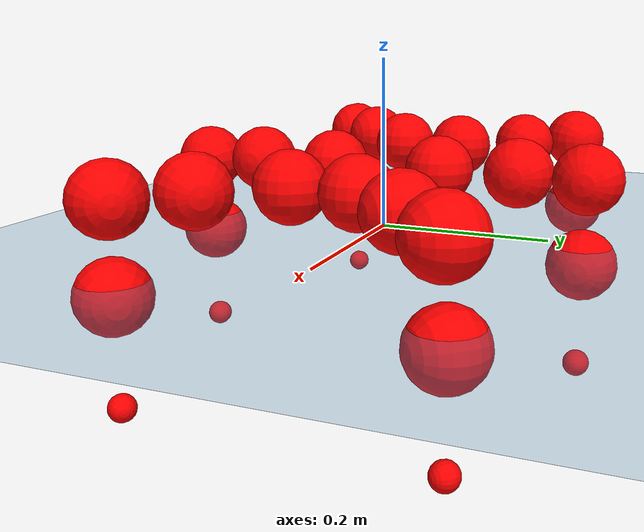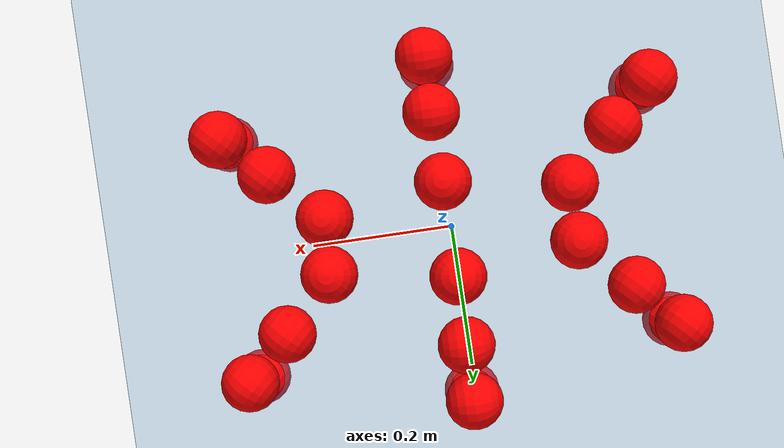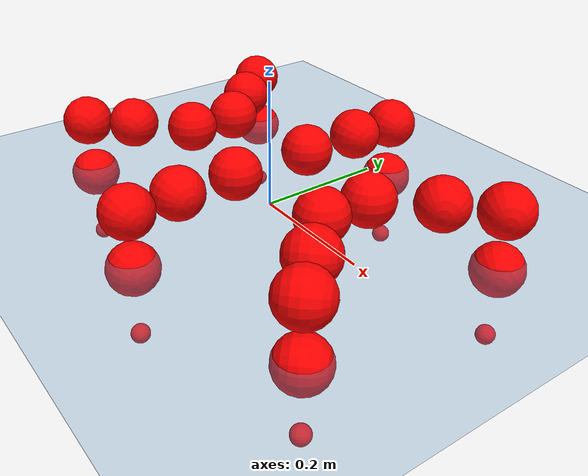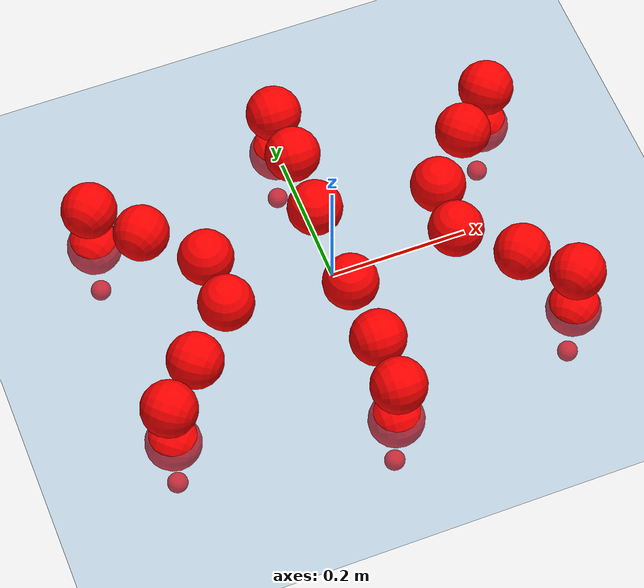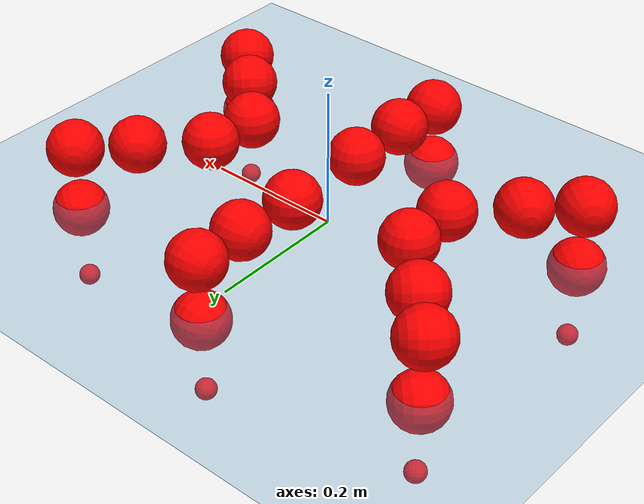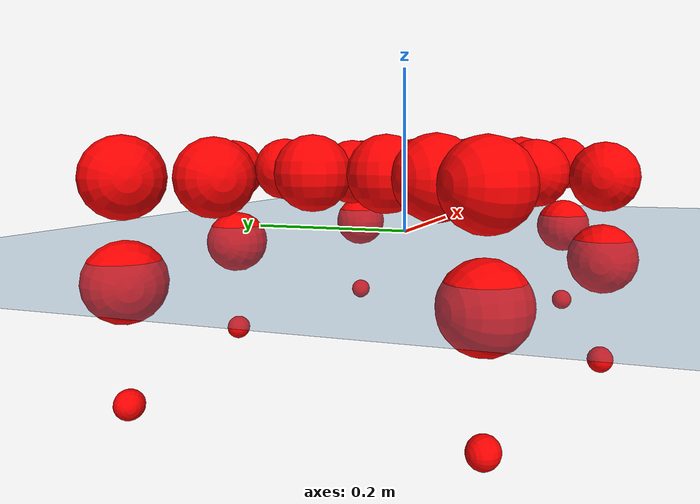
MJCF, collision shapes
<mujoco model="Golem">
  <compiler angle="radian" assetdir="assets" balanceinertia="true" inertiafromgeom="false"/>

  <option timestep="0.005" density="1.2" viscosity="2e-05"/>

  <size nkey="1"/>

  <visual>
    <quality shadowsize="8192"/>
    <map shadowclip="0.5"/>
  </visual>

  <default>
    <default class="/">
      <joint armature="0.01" damping="0.01" frictionloss="0.01"/>
      <geom contype="0" conaffinity="0" group="1" solref="-1000 -80"/>
      <site size="0.01 0.005 0.005" group="5"/>
      <general forcelimited="true" biastype="affine" gainprm="25" biasprm="0 -25 -0.5"/>
      <default class="visual">
        <geom type="mesh" group="2"/>
      </default>
      <default class="collision">
        <geom group="3"/>
      </default>
      <default class="foot">
        <geom size="0.01 0 0" condim="6" group="4" priority="1" solimp="0.015 1 0.01"/>
      </default>
      <default class="reward_collision_sphere">
        <geom group="5" rgba="1 0 0 1"/>
      </default>
    </default>
  </default>

  <asset>
    <texture type="skybox" colorspace="auto" name="//unnamed_texture_0" builtin="gradient" rgb1="0.95 0.95 0.95" rgb2="0.95 0.95 0.95" width="100" height="600"/>
    <texture type="2d" colorspace="auto" name="texplane" builtin="checker" rgb1="0.345 0.575 0.748" rgb2="0.345 0.575 0.748" markrgb="1 1 1" width="512" height="512"/>
    <material name="MatPlane" class="/" texture="texplane" texuniform="true" texrepeat="2 2" specular="0.9"/>
    <mesh name="body" class="/" file="body.stl" scale="0.001 0.001 0.001"/>
    <mesh name="coxa" class="/" file="coxa.stl" scale="0.001 0.001 0.001"/>
    <mesh name="femur" class="/" file="femur.stl" scale="0.001 0.001 0.001"/>
    <mesh name="tibia" class="/" file="tibia.stl" scale="0.001 0.001 0.001"/>
    <mesh name="tarsus" class="/" file="tarsus.stl" scale="0.001 0.001 0.001"/>
  </asset>

  <worldbody>
    <geom name="floor" class="/" size="100 100 0.125" type="plane" group="0" material="MatPlane"/>
    <light name="toplight_shadow" class="/" pos="0 0 5" dir="0.0990148 0.0990148 -0.990148" type="directional" ambient="0.04 0.04 0.04" diffuse="0.55 0.55 0.55" specular="0.12 0.12 0.12"/>
    <light name="toplight_fill" class="/" pos="0 0 5" dir="0.0990148 0.0990148 -0.990148" type="directional" castshadow="false" ambient="0.04 0.04 0.04" diffuse="0.3 0.3 0.3" specular="0.08 0.08 0.08"/>
    <body name="trunk" pos="0.00169541 0.00236405 0.00269127" quat="1 -1.50902e-05 4.46077e-05 2.0292e-05">
      <inertial pos="-0.00146468 -0.000488794 -0.00322126" quat="0.999986 0.00255512 -0.00281353 -0.00366215" mass="3.87254" diaginertia="0.0155941 0.00245414 0.0189953"/>
      <joint name="//unnamed_joint_0" type="free"/>
      <geom name="//unnamed_geom_1" class="/" pos="0 0 0.0726082" quat="1 0 0 0" type="mesh" rgba="0.9 0.9 0.9 1" mesh="body"/>
      <site name="imu" class="/" pos="0.147119 -0.0139513 0.118581" size="0.00992955"/>
      <camera name="track" class="/" pos="0 -1.50207 0" quat="0.707107 0.707107 0 0" mode="trackcom"/>
      <camera name="ego_camera" class="/" pos="0.142133 0 0.11345" quat="-0.5 -0.5 0.5 0.5"/>
      <body name="coxa_RR" pos="-0.193504 -0.0605994 0.0747394" quat="0.383731 -0.000401588 0.000128228 -0.923445">
        <inertial pos="-0.00041983 -0.00181868 0.00221365" quat="0.999925 -0.0091984 0.00476752 -0.00658896" mass="0.202415" diaginertia="0.0155567 0.00233965 0.0188515"/>
        <joint name="coxa_joint_RR" class="/" pos="0 0 0" axis="-8.87546e-05 -0.000984785 -1" stiffness="0.00685926" range="-3.08288 3.13323" armature="0.0100895" damping="0.00235176" frictionloss="0.0103054"/>
        <geom name="//unnamed_geom_2" class="/" type="mesh" rgba="0.2 0.2 0.2 1" mesh="coxa"/>
        <geom name="//unnamed_geom_3" class="reward_collision_sphere" size="0.0397182" pos="-0.0327998 0 0"/>
        <body name="femur_RR" pos="0.0664508 0.000199774 -0.000409678" quat="0.499212 -0.499831 0.50017 0.500786">
          <inertial pos="-0.00284736 -0.000657132 -0.000297152" quat="1 -0.000578547 -7.40661e-05 0.000654048" mass="0.199828" diaginertia="0.0159612 0.00244985 0.0192476"/>
          <joint name="femur_joint_RR" class="/" pos="0 0 0" axis="-0.00399889 -0.00351728 -0.999986" stiffness="0.00808741" range="-3.19587 3.19214" armature="0.00844659" damping="0" frictionloss="0.010036"/>
          <geom name="//unnamed_geom_4" class="/" type="mesh" rgba="0.9 0.9 0.9 1" mesh="femur"/>
          <geom name="//unnamed_geom_5" class="reward_collision_sphere" size="0.0397182"/>
          <body name="tibia_RR" pos="0.00233722 -0.0802676 -0.000674728" quat="0.000184029 1 -4.12924e-05 -0.000371755">
            <inertial pos="0.00226067 5.65432e-05 0.000171562" quat="0.999918 -5.91853e-05 -0.0108147 -0.00689874" mass="0.194843" diaginertia="0.0161282 0.00254945 0.0197752"/>
            <joint name="tibia_joint_RR" class="/" pos="0 0 0" axis="-0.0124821 0.00750175 0.999894" range="-3.1853 3.11409" armature="0.0101428" damping="0.0223118" frictionloss="0.00959612"/>
            <geom name="//unnamed_geom_6" class="/" type="mesh" rgba="0.2 0.2 0.2 1" mesh="tibia"/>
            <geom name="//unnamed_geom_7" class="reward_collision_sphere" size="0.0397182"/>
            <body name="tarsus_RR" pos="0.0965945 -0.0018974 -0.00023346" quat="1 -6.88406e-05 0.000413926 -0.000321681">
              <inertial pos="0.069531 0.00157029 -0.00272589" quat="0.506006 0.494347 0.494104 0.505411" mass="0.203035" diaginertia="0.0155139 0.00253892 0.0192486"/>
              <joint name="tarsus_joint_RR" class="/" pos="0 0 0" axis="-0.00322793 0.0051263 0.999982" range="-3.10017 3.14994" armature="0.0106487" damping="0.0433377" frictionloss="0.0111479"/>
              <geom name="//unnamed_geom_8" class="/" type="mesh" rgba="0.9 0.9 0.9 1" mesh="tarsus"/>
              <geom name="foot_1" class="foot" size="0.0105694" pos="0.122453 0 0" quat="0 -0.707107 0 0.707107"/>
              <geom name="//unnamed_geom_10" class="reward_collision_sphere" size="0.0397182"/>
              <geom name="//unnamed_geom_11" class="reward_collision_sphere" size="0.0148943" pos="0.117533 0 0"/>
              <site name="foot_1" class="foot" pos="0.122453 0 0" quat="0 -0.707107 0 0.707107" size="0.00992955"/>
            </body>
          </body>
        </body>
      </body>
      <body name="coxa_RM" pos="0.00121545 -0.0974518 0.0711656" quat="0.706823 -3.91901e-05 -3.35427e-05 -0.70739">
        <inertial pos="0.000691931 0.00247284 0.00129536" quat="0.999997 0.00217873 -0.000354836 0.000944361" mass="0.190174" diaginertia="0.0157472 0.00242429 0.0189263"/>
        <joint name="coxa_joint_RM" class="/" pos="0 0 0" axis="-0.00312286 -0.00571116 -0.999979" range="-3.13845 3.12279" armature="0.00987224" damping="0.0168218" frictionloss="0.00918767"/>
        <geom name="//unnamed_geom_12" class="/" type="mesh" rgba="0.2 0.2 0.2 1" mesh="coxa"/>
        <geom name="//unnamed_geom_13" class="reward_collision_sphere" size="0.0397182" pos="-0.0327998 0 0"/>
        <body name="femur_RM" pos="0.0638328 0.002314 6.80485e-05" quat="0.499998 -0.50026 0.499922 0.49982">
          <inertial pos="-0.000785709 -0.00279595 0.00282816" quat="0.999999 0.00115127 0.000738191 -0.0002264" mass="0.200953" diaginertia="0.0153647 0.00238297 0.0189127"/>
          <joint name="femur_joint_RM" class="/" pos="0 0 0" axis="0.000341639 0.00090117 -1" range="-3.13279 3.09007" armature="0.0104695" damping="0" frictionloss="0.0102365"/>
          <geom name="//unnamed_geom_14" class="/" type="mesh" rgba="0.9 0.9 0.9 1" mesh="femur"/>
          <geom name="//unnamed_geom_15" class="reward_collision_sphere" size="0.0397182"/>
          <body name="tibia_RM" pos="0.00344089 -0.0775941 -0.000849896" quat="-1.86336e-05 1 0.000129857 7.97357e-05">
            <inertial pos="-0.0018374 -0.00213166 0.00147788" quat="0.999961 -0.0020009 0.00842835 -0.00166867" mass="0.195919" diaginertia="0.01569 0.00238018 0.0182972"/>
            <joint name="tibia_joint_RM" class="/" pos="0 0 0" axis="-0.000671096 0.00107289 0.999999" range="-3.15709 3.18566" armature="0.0111894" damping="0.0204074" frictionloss="0.0112463"/>
            <geom name="//unnamed_geom_16" class="/" type="mesh" rgba="0.2 0.2 0.2 1" mesh="tibia"/>
            <geom name="//unnamed_geom_17" class="reward_collision_sphere" size="0.0397182"/>
            <body name="tarsus_RM" pos="0.0936518 -0.000362623 0.00122855" quat="1 5.86767e-06 -0.000133422 0.000158467">
              <inertial pos="0.0666786 -0.000971424 0.000682483" quat="0.502743 0.500142 0.495717 0.501369" mass="0.202855" diaginertia="0.0165341 0.00248847 0.0194749"/>
              <joint name="tarsus_joint_RM" class="/" pos="0 0 0" axis="-0.00101819 -0.000216587 0.999999" range="-3.13569 3.14821" armature="0.00864853" damping="0.00967429" frictionloss="0.00943359"/>
              <geom name="//unnamed_geom_18" class="/" type="mesh" rgba="0.9 0.9 0.9 1" mesh="tarsus"/>
              <geom name="foot_2" class="foot" size="0.0089686" pos="0.122453 0 0" quat="0 -0.707107 0 0.707107"/>
              <geom name="//unnamed_geom_20" class="reward_collision_sphere" size="0.0397182"/>
              <geom name="//unnamed_geom_21" class="reward_collision_sphere" size="0.0148943" pos="0.117533 0 0"/>
              <site name="foot_2" class="foot" pos="0.122453 0 0" quat="0 -0.707107 0 0.707107" size="0.00992955"/>
            </body>
          </body>
        </body>
      </body>
      <body name="coxa_RF" pos="0.191912 -0.0609172 0.0736879" quat="0.923731 -0.000301206 8.73639e-05 -0.383041">
        <inertial pos="0.00269771 -0.000298886 -0.000513672" quat="0.99999 -0.00297843 -0.0028827 0.00137137" mass="0.196124" diaginertia="0.0160963 0.00239812 0.0183069"/>
        <joint name="coxa_joint_RF" class="/" pos="0 0 0" axis="-0.00775992 0.000669154 -0.99997" range="-3.19384 3.15892" armature="0.00867696" damping="0.0142495" frictionloss="0.0104587"/>
        <geom name="//unnamed_geom_22" class="/" type="mesh" rgba="0.2 0.2 0.2 1" mesh="coxa"/>
        <geom name="//unnamed_geom_23" class="reward_collision_sphere" size="0.0397182" pos="-0.0327998 0 0"/>
        <body name="femur_RF" pos="0.0659937 -0.000463675 0.00376507" quat="0.500839 -0.499714 0.499435 0.50001">
          <inertial pos="0.00139798 0.000171406 -0.00266802" quat="0.999993 0.00342708 -0.000558085 -0.00151199" mass="0.191014" diaginertia="0.0153963 0.00246168 0.0189798"/>
          <joint name="femur_joint_RF" class="/" pos="0 0 0" axis="0.00184022 0.00172683 -0.999997" range="-3.08879 3.12814" armature="0.0113227" damping="0" frictionloss="0.0106861"/>
          <geom name="//unnamed_geom_24" class="/" type="mesh" rgba="0.9 0.9 0.9 1" mesh="femur"/>
          <geom name="//unnamed_geom_25" class="reward_collision_sphere" size="0.0397182"/>
          <body name="tibia_RF" pos="0.000857631 -0.081818 0.0013886" quat="4.64176e-05 1 -2.35625e-05 1.85982e-05">
            <inertial pos="0.00131514 0.00293794 -0.000796068" quat="0.999992 -0.00138783 0.0029064 -0.00239783" mass="0.197604" diaginertia="0.016011 0.00232567 0.0195772"/>
            <joint name="tibia_joint_RF" class="/" pos="0 0 0" axis="-0.00227277 0.00307765 0.999993" range="-3.16146 3.13897" armature="0.0108133" damping="0.00141953" frictionloss="0.00857022"/>
            <geom name="//unnamed_geom_26" class="/" type="mesh" rgba="0.2 0.2 0.2 1" mesh="tibia"/>
            <geom name="//unnamed_geom_27" class="reward_collision_sphere" size="0.0397182"/>
            <body name="tarsus_RF" pos="0.0967808 0.00123076 -6.86008e-06" quat="0.999999 -0.00051557 0.000463422 0.00081214">
              <inertial pos="0.06401 -0.00205154 -0.000236688" quat="0.504921 0.497081 0.502108 0.495835" mass="0.191266" diaginertia="0.0162515 0.00236904 0.0189821"/>
              <joint name="tarsus_joint_RF" class="/" pos="0 0 0" axis="-0.00785698 -0.0111421 0.999907" stiffness="0.00960949" range="-3.09894 3.15936" armature="0.0104254" damping="0.000905017" frictionloss="0.0100456"/>
              <geom name="//unnamed_geom_28" class="/" type="mesh" rgba="0.9 0.9 0.9 1" mesh="tarsus"/>
              <geom name="foot_3" class="foot" size="0.00941425" pos="0.122453 0 0" quat="0 -0.707107 0 0.707107"/>
              <geom name="//unnamed_geom_30" class="reward_collision_sphere" size="0.0397182"/>
              <geom name="//unnamed_geom_31" class="reward_collision_sphere" size="0.0148943" pos="0.117533 0 0"/>
              <site name="foot_3" class="foot" pos="0.122453 0 0" quat="0 -0.707107 0 0.707107" size="0.00992955"/>
            </body>
          </body>
        </body>
      </body>
      <body name="coxa_LR" pos="-0.194762 0.0651771 0.0746645" quat="0.381982 4.9399e-05 0.000576109 0.92417">
        <inertial pos="-0.000777175 -0.00198506 0.00182503" quat="0.999905 -0.00771942 -0.0113028 -0.00155831" mass="0.192299" diaginertia="0.01513 0.00239597 0.01828"/>
        <joint name="coxa_joint_LR" class="/" pos="0 0 0" axis="0.00165181 0.0143842 -0.999895" range="-3.18122 3.1789" armature="0.00879674" damping="0.0110205" frictionloss="0.0102726"/>
        <geom name="//unnamed_geom_32" class="/" type="mesh" rgba="0.2 0.2 0.2 1" mesh="coxa"/>
        <geom name="//unnamed_geom_33" class="reward_collision_sphere" size="0.0397182" pos="-0.0327998 0 0"/>
        <body name="femur_LR" pos="0.0670675 -0.00168146 -0.00276334" quat="0.500006 -0.500657 0.500529 0.498806">
          <inertial pos="0.00131792 0.000510708 -9.45822e-05" quat="0.999948 0.000991787 -0.00339553 -0.00961572" mass="0.190766" diaginertia="0.0155609 0.00240738 0.0192705"/>
          <joint name="femur_joint_LR" class="/" pos="0 0 0" axis="-0.0104417 0.00785293 0.999915" range="-3.10926 3.08367" armature="0.0111182" damping="0" frictionloss="0.0104182"/>
          <geom name="//unnamed_geom_34" class="/" type="mesh" rgba="0.9 0.9 0.9 1" mesh="femur"/>
          <geom name="//unnamed_geom_35" class="reward_collision_sphere" size="0.0397182"/>
          <body name="tibia_LR" pos="-0.00129578 -0.082728 -0.00340808" quat="0.000410257 0.999999 0.00111564 -0.00049376">
            <inertial pos="0.00126162 -0.00154617 0.00280676" quat="0.99991 -0.00651383 -0.00397031 0.0110034" mass="0.194745" diaginertia="0.0161181 0.00244548 0.0187554"/>
            <joint name="tibia_joint_LR" class="/" pos="0 0 0" axis="-0.00073847 0.00136855 -0.999999" range="-3.19536 3.18983" armature="0.0087252" damping="0.00726326" frictionloss="0.0112914"/>
            <geom name="//unnamed_geom_36" class="/" type="mesh" rgba="0.2 0.2 0.2 1" mesh="tibia"/>
            <geom name="//unnamed_geom_37" class="reward_collision_sphere" size="0.0397182"/>
            <body name="tarsus_LR" pos="0.097415 0.00065291 0.00197952" quat="0.999999 0.000404639 -0.00108432 -0.000536976">
              <inertial pos="0.0684119 0.000883216 0.000660464" quat="0.504543 0.487958 0.504596 0.502709" mass="0.202943" diaginertia="0.0160551 0.00247725 0.0194313"/>
              <joint name="tarsus_joint_LR" class="/" pos="0 0 0" axis="-0.00110323 0.00749694 -0.999971" range="-3.18997 3.1432" armature="0.00987438" damping="0.0288085" frictionloss="0.00873972"/>
              <geom name="//unnamed_geom_38" class="/" type="mesh" rgba="0.9 0.9 0.9 1" mesh="tarsus"/>
              <geom name="foot_4" class="foot" size="0.0101318" pos="0.122453 0 0" quat="0.707107 0 -0.707107 0"/>
              <geom name="//unnamed_geom_40" class="reward_collision_sphere" size="0.0397182"/>
              <geom name="//unnamed_geom_41" class="reward_collision_sphere" size="0.0148943" pos="0.117533 0 0"/>
              <site name="foot_4" class="foot" pos="0.122453 0 0" quat="0.707107 0 -0.707107 0" size="0.00992955"/>
            </body>
          </body>
        </body>
      </body>
      <body name="coxa_LM" pos="-0.000798662 0.100091 0.070551" quat="0.707873 -0.000271174 0.0002415 0.70634">
        <inertial pos="-0.00223671 -0.000925748 -0.00272584" quat="0.999998 -2.56092e-05 -0.000661284 -0.00184128" mass="0.190776" diaginertia="0.0149085 0.00230008 0.019076"/>
        <joint name="coxa_joint_LM" class="/" pos="0 0 0" axis="0.00066911 -0.00349974 -0.999994" range="-3.13483 3.13503" armature="0.0109877" damping="0.00535974" frictionloss="0.00854881"/>
        <geom name="//unnamed_geom_42" class="/" type="mesh" rgba="0.2 0.2 0.2 1" mesh="coxa"/>
        <geom name="//unnamed_geom_43" class="reward_collision_sphere" size="0.0397182" pos="-0.0327998 0 0"/>
        <body name="femur_LM" pos="0.0616947 -0.00204278 0.0024857" quat="0.500195 -0.499891 0.499532 0.500382">
          <inertial pos="0.00294421 0.00213123 0.00227634" quat="1 0.000621371 1.49646e-05 -2.23123e-05" mass="0.195506" diaginertia="0.0160198 0.00237857 0.0183567"/>
          <joint name="femur_joint_LM" class="/" pos="0 0 0" axis="0.00331029 0.00246213 0.999991" stiffness="0.00192287" range="-3.15937 3.08308" armature="0.0110883" damping="0" frictionloss="0.0113271"/>
          <geom name="//unnamed_geom_44" class="/" type="mesh" rgba="0.9 0.9 0.9 1" mesh="femur"/>
          <geom name="//unnamed_geom_45" class="reward_collision_sphere" size="0.0397182"/>
          <body name="tibia_LM" pos="0.00189844 -0.0776437 1.19113e-05" quat="-3.65253e-05 1 0.00038812 0.000427896">
            <inertial pos="-0.00236507 -0.00197961 0.00159087" quat="0.999973 0.000279169 0.00730325 0.000171092" mass="0.193821" diaginertia="0.0155254 0.00237981 0.0180761"/>
            <joint name="tibia_joint_LM" class="/" pos="0 0 0" axis="0.00300107 -0.0129033 -0.999912" range="-3.13709 3.09112" armature="0.0105748" damping="0" frictionloss="0.00970615"/>
            <geom name="//unnamed_geom_46" class="/" type="mesh" rgba="0.2 0.2 0.2 1" mesh="tibia"/>
            <geom name="//unnamed_geom_47" class="reward_collision_sphere" size="0.0397182"/>
            <body name="tarsus_LM" pos="0.096295 -0.00252158 0.00201713" quat="1 -0.000458863 0.000403814 -3.90347e-05">
              <inertial pos="0.0626742 0.0002302 -0.00267248" quat="0.497973 0.503566 0.505323 0.493045" mass="0.197755" diaginertia="0.0154349 0.00225571 0.0177091"/>
              <joint name="tarsus_joint_LM" class="/" pos="0 0 0" axis="-0.00789575 0.00791385 -0.999938" stiffness="0.00166319" range="-3.12269 3.08926" armature="0.00900898" damping="0.0186305" frictionloss="0.00982546"/>
              <geom name="//unnamed_geom_48" class="/" type="mesh" rgba="0.9 0.9 0.9 1" mesh="tarsus"/>
              <geom name="foot_5" class="foot" size="0.010173" pos="0.122453 0 0" quat="0.707107 0 -0.707107 0"/>
              <geom name="//unnamed_geom_50" class="reward_collision_sphere" size="0.0397182"/>
              <geom name="//unnamed_geom_51" class="reward_collision_sphere" size="0.0148943" pos="0.117533 0 0"/>
              <site name="foot_5" class="foot" pos="0.122453 0 0" quat="0.707107 0 -0.707107 0" size="0.00992955"/>
            </body>
          </body>
        </body>
      </body>
      <body name="coxa_LF" pos="0.196598 0.0624291 0.0741318" quat="0.923595 0.000145345 0.000750206 0.383369">
        <inertial pos="0.00104026 -0.000163246 0.00173801" quat="0.999972 -0.00544332 0.00416201 -0.00285201" mass="0.198945" diaginertia="0.0150642 0.00243435 0.0182418"/>
        <joint name="coxa_joint_LF" class="/" pos="0 0 0" axis="-0.0146692 -0.000303721 -0.999892" stiffness="0.00345349" range="-3.1358 3.14087" armature="0.00933499" damping="0.00640668" frictionloss="0.00969971"/>
        <geom name="//unnamed_geom_52" class="/" type="mesh" rgba="0.2 0.2 0.2 1" mesh="coxa"/>
        <geom name="//unnamed_geom_53" class="reward_collision_sphere" size="0.0397182" pos="-0.0327998 0 0"/>
        <body name="femur_LF" pos="0.0664027 0.00300698 0.00152422" quat="0.499992 -0.49976 0.500281 0.499968">
          <inertial pos="0.00251339 -0.00159237 0.00200271" quat="0.999977 -0.00229419 0.00320248 0.00544679" mass="0.190074" diaginertia="0.015226 0.00239018 0.0184584"/>
          <joint name="femur_joint_LF" class="/" pos="0 0 0" axis="-0.00111617 0.0113242 0.999935" stiffness="0.000124235" range="-3.14871 3.1668" armature="0.0114706" damping="0.00655901" frictionloss="0.00954977"/>
          <geom name="//unnamed_geom_54" class="/" type="mesh" rgba="0.9 0.9 0.9 1" mesh="femur"/>
          <geom name="//unnamed_geom_55" class="reward_collision_sphere" size="0.0397182"/>
          <body name="tibia_LF" pos="0.00212665 -0.0843283 -0.000870743" quat="-0.000469673 0.999999 -0.000365637 0.00132965">
            <inertial pos="0.00037017 0.000764373 -0.000364426" quat="1 -3.55395e-05 -0.000377111 -0.000104957" mass="0.195571" diaginertia="0.015794 0.00238199 0.0188073"/>
            <joint name="tibia_joint_LF" class="/" pos="0 0 0" axis="0.00791695 -0.00926842 -0.999926" range="-3.1728 3.19549" armature="0.00881818" damping="0.0103561" frictionloss="0.0104123"/>
            <geom name="//unnamed_geom_56" class="/" type="mesh" rgba="0.2 0.2 0.2 1" mesh="tibia"/>
            <geom name="//unnamed_geom_57" class="reward_collision_sphere" size="0.0397182"/>
            <body name="tarsus_LF" pos="0.0969398 0.0014892 -0.00298604" quat="1 0.000417267 -0.000844542 -0.000118517">
              <inertial pos="0.0633056 0.00216712 -0.000483593" quat="0.499264 0.499797 0.501123 0.499815" mass="0.190024" diaginertia="0.0152281 0.00232188 0.0189588"/>
              <joint name="tarsus_joint_LF" class="/" pos="0 0 0" axis="-0.006204 0.0127 -0.9999" stiffness="0.0280509" range="-3.18384 3.18027" armature="0.0100337" damping="0" frictionloss="0.0103792"/>
              <geom name="//unnamed_geom_58" class="/" type="mesh" rgba="0.9 0.9 0.9 1" mesh="tarsus"/>
              <geom name="foot_6" class="foot" size="0.0105931" pos="0.122453 0 0" quat="0.707107 0 -0.707107 0"/>
              <geom name="//unnamed_geom_60" class="reward_collision_sphere" size="0.0397182"/>
              <geom name="//unnamed_geom_61" class="reward_collision_sphere" size="0.0148943" pos="0.117533 0 0"/>
              <site name="foot_6" class="foot" pos="0.122453 0 0" quat="0.707107 0 -0.707107 0" size="0.00992955"/>
            </body>
          </body>
        </body>
      </body>
    </body>
  </worldbody>

  <contact>
    <pair class="/" geom1="floor" geom2="foot_1" name="//unnamed_contact_0"/>
    <pair class="/" geom1="floor" geom2="foot_2" name="//unnamed_contact_1"/>
    <pair class="/" geom1="floor" geom2="foot_3" name="//unnamed_contact_2"/>
    <pair class="/" geom1="floor" geom2="foot_4" name="//unnamed_contact_3"/>
    <pair class="/" geom1="floor" geom2="foot_5" name="//unnamed_contact_4"/>
    <pair class="/" geom1="floor" geom2="foot_6" name="//unnamed_contact_5"/>
  </contact>

  <actuator>
    <general name="coxa_joint_RR" class="/" joint="coxa_joint_RR" forcerange="-7.76878 7.76878" gainprm="24.2435" biasprm="0 -24.2435 -0.548323"/>
    <general name="femur_joint_RR" class="/" joint="femur_joint_RR" forcerange="-6.5988 6.5988" gainprm="24.2435" biasprm="0 -24.2435 -0.548323"/>
    <general name="tibia_joint_RR" class="/" joint="tibia_joint_RR" forcerange="-6.73582 6.73582" gainprm="24.2435" biasprm="0 -24.2435 -0.548323"/>
    <general name="tarsus_joint_RR" class="/" joint="tarsus_joint_RR" forcerange="-6.49536 6.49536" gainprm="24.2435" biasprm="0 -24.2435 -0.548323"/>
    <general name="coxa_joint_RM" class="/" joint="coxa_joint_RM" forcerange="-7.28291 7.28291" gainprm="24.2435" biasprm="0 -24.2435 -0.548323"/>
    <general name="femur_joint_RM" class="/" joint="femur_joint_RM" forcerange="-7.03921 7.03921" gainprm="24.2435" biasprm="0 -24.2435 -0.548323"/>
    <general name="tibia_joint_RM" class="/" joint="tibia_joint_RM" forcerange="-6.84884 6.84884" gainprm="24.2435" biasprm="0 -24.2435 -0.548323"/>
    <general name="tarsus_joint_RM" class="/" joint="tarsus_joint_RM" forcerange="-7.02266 7.02266" gainprm="24.2435" biasprm="0 -24.2435 -0.548323"/>
    <general name="coxa_joint_RF" class="/" joint="coxa_joint_RF" forcerange="-7.48189 7.48189" gainprm="24.2435" biasprm="0 -24.2435 -0.548323"/>
    <general name="femur_joint_RF" class="/" joint="femur_joint_RF" forcerange="-7.64659 7.64659" gainprm="24.2435" biasprm="0 -24.2435 -0.548323"/>
    <general name="tibia_joint_RF" class="/" joint="tibia_joint_RF" forcerange="-7.89857 7.89857" gainprm="24.2435" biasprm="0 -24.2435 -0.548323"/>
    <general name="tarsus_joint_RF" class="/" joint="tarsus_joint_RF" forcerange="-7.65875 7.65875" gainprm="24.2435" biasprm="0 -24.2435 -0.548323"/>
    <general name="coxa_joint_LR" class="/" joint="coxa_joint_LR" forcerange="-6.52799 6.52799" gainprm="24.2435" biasprm="0 -24.2435 -0.548323"/>
    <general name="femur_joint_LR" class="/" joint="femur_joint_LR" forcerange="-7.67961 7.67961" gainprm="24.2435" biasprm="0 -24.2435 -0.548323"/>
    <general name="tibia_joint_LR" class="/" joint="tibia_joint_LR" forcerange="-7.97744 7.97744" gainprm="24.2435" biasprm="0 -24.2435 -0.548323"/>
    <general name="tarsus_joint_LR" class="/" joint="tarsus_joint_LR" forcerange="-7.11444 7.11444" gainprm="24.2435" biasprm="0 -24.2435 -0.548323"/>
    <general name="coxa_joint_LM" class="/" joint="coxa_joint_LM" forcerange="-7.86546 7.86546" gainprm="24.2435" biasprm="0 -24.2435 -0.548323"/>
    <general name="femur_joint_LM" class="/" joint="femur_joint_LM" forcerange="-7.33872 7.33872" gainprm="24.2435" biasprm="0 -24.2435 -0.548323"/>
    <general name="tibia_joint_LM" class="/" joint="tibia_joint_LM" forcerange="-6.6643 6.6643" gainprm="24.2435" biasprm="0 -24.2435 -0.548323"/>
    <general name="tarsus_joint_LM" class="/" joint="tarsus_joint_LM" forcerange="-6.47925 6.47925" gainprm="24.2435" biasprm="0 -24.2435 -0.548323"/>
    <general name="coxa_joint_LF" class="/" joint="coxa_joint_LF" forcerange="-7.61638 7.61638" gainprm="24.2435" biasprm="0 -24.2435 -0.548323"/>
    <general name="femur_joint_LF" class="/" joint="femur_joint_LF" forcerange="-6.54902 6.54902" gainprm="24.2435" biasprm="0 -24.2435 -0.548323"/>
    <general name="tibia_joint_LF" class="/" joint="tibia_joint_LF" forcerange="-7.25361 7.25361" gainprm="24.2435" biasprm="0 -24.2435 -0.548323"/>
    <general name="tarsus_joint_LF" class="/" joint="tarsus_joint_LF" forcerange="-7.2527 7.2527" gainprm="24.2435" biasprm="0 -24.2435 -0.548323"/>
  </actuator>

  <sensor>
    <gyro site="imu" name="imu_angular_velocity"/>
    <velocimeter site="imu" name="imu_linear_velocity"/>
    <framelinvel objtype="site" objname="foot_1" name="foot_1_global_linear_velocity"/>
    <framelinvel objtype="site" objname="foot_2" name="foot_2_global_linear_velocity"/>
    <framelinvel objtype="site" objname="foot_3" name="foot_3_global_linear_velocity"/>
    <framelinvel objtype="site" objname="foot_4" name="foot_4_global_linear_velocity"/>
    <framelinvel objtype="site" objname="foot_5" name="foot_5_global_linear_velocity"/>
    <framelinvel objtype="site" objname="foot_6" name="foot_6_global_linear_velocity"/>
  </sensor>

  <keyframe>
    <key name="home" qpos="0 0 0.1457 1 0 0 0 0 0 0 0 0 0 0 0 0 0 0 0 0 0 0 0 0 0 0 0 0 0 0 0"/>
  </keyframe>
</mujoco>
